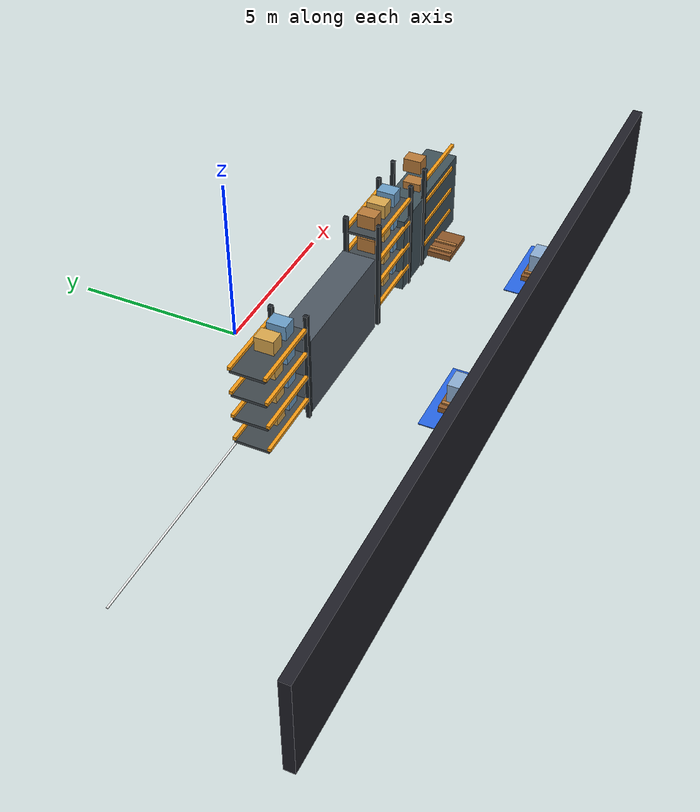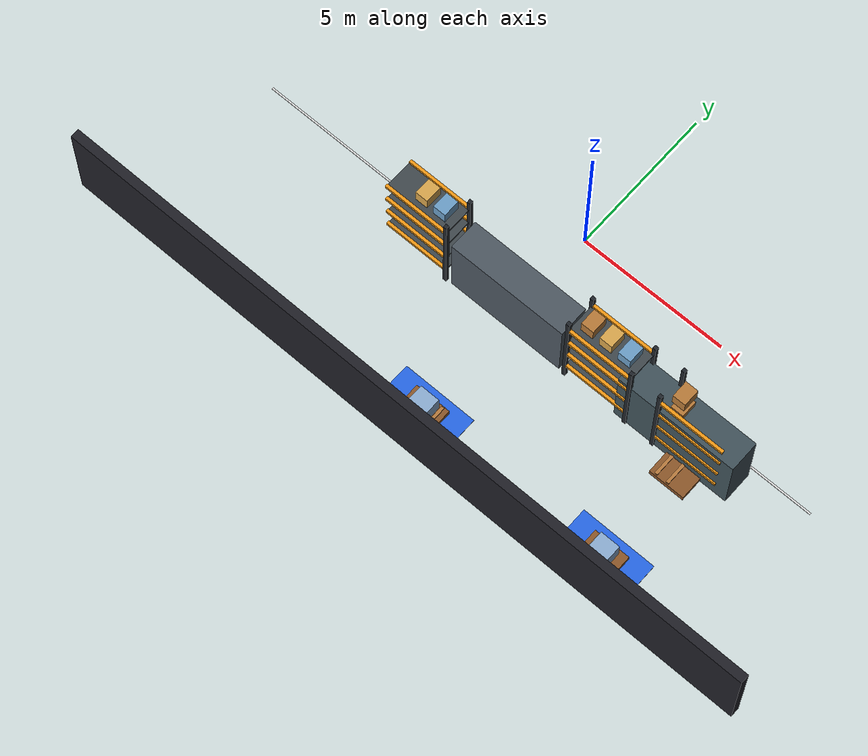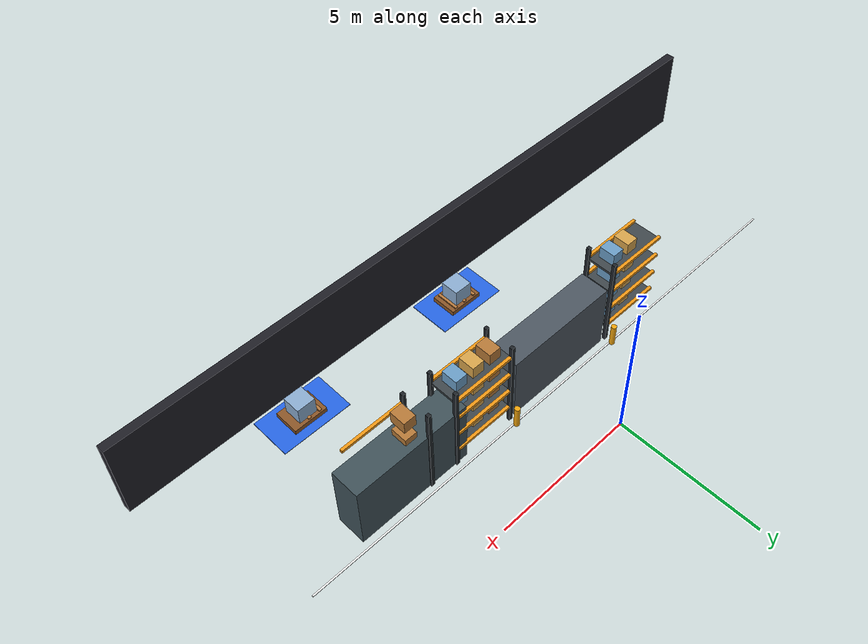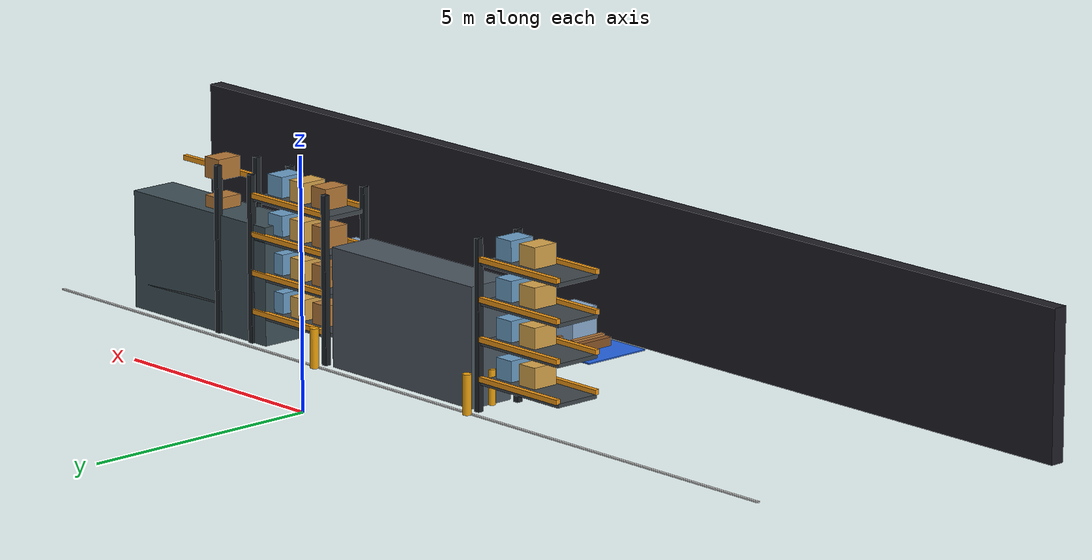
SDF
<sdf version="1.9">
 <world name="synaids_advanced_warehouse">
  <model name="wall_south">
   <static>true</static>
   <pose>0 -8 1.5 0 0 0</pose>
   <link name="link">
    <collision name="collision"><geometry><box><size>24 0.3 3</size></box></geometry></collision>
    <visual name="visual">
     <geometry><box><size>24 0.3 3</size></box></geometry>
     <material><ambient>0.08 0.08 0.10 1</ambient><diffuse>0.12 0.12 0.15 1</diffuse></material>
    </visual>
   </link>
  </model>
  <model name="shelf_5">
   <static>true</static>
   <pose>0 -3 1.2 0 0 0</pose>
   <link name="link">
    <collision name="collision"><geometry><box><size>4 1.0 2.4</size></box></geometry></collision>
    <visual name="visual">
     <geometry><box><size>4 1.0 2.4</size></box></geometry>
     <material><ambient>0.16 0.18 0.20 1</ambient><diffuse>0.30 0.34 0.38 1</diffuse></material>
    </visual>
   </link>
  </model>
  <model name="shelf_6">
   <static>true</static>
   <pose>6 -3 1.2 0 0 0</pose>
   <link name="link">
    <collision name="collision"><geometry><box><size>4 1.0 2.4</size></box></geometry></collision>
    <visual name="visual">
     <geometry><box><size>4 1.0 2.4</size></box></geometry>
     <material><ambient>0.12 0.18 0.20 1</ambient><diffuse>0.25 0.32 0.35 1</diffuse></material>
    </visual>
   </link>
  </model>
  <model name="storage_rack_6_post_2">
   <static>true</static>
   <pose>-2.1999999999999997 -3.5 1.7 0 0 0</pose>
   <link name="link">
    <visual name="visual">
     <geometry><box><size>0.12 0.12 3.4</size></box></geometry>
     <material>
      <ambient>0.12 0.14 0.16 1</ambient>
      <diffuse>0.12 0.14 0.16 1</diffuse>
      <specular>0.15 0.15 0.15 1</specular>
     </material>
    </visual>
    <collision name="collision"><geometry><box><size>0.12 0.12 3.4</size></box></geometry></collision>
   </link>
  </model>
  <model name="storage_rack_6_post_3">
   <static>true</static>
   <pose>-2.1999999999999997 -2.5 1.7 0 0 0</pose>
   <link name="link">
    <visual name="visual">
     <geometry><box><size>0.12 0.12 3.4</size></box></geometry>
     <material>
      <ambient>0.12 0.14 0.16 1</ambient>
      <diffuse>0.12 0.14 0.16 1</diffuse>
      <specular>0.15 0.15 0.15 1</specular>
     </material>
    </visual>
    <collision name="collision"><geometry><box><size>0.12 0.12 3.4</size></box></geometry></collision>
   </link>
  </model>
  <model name="storage_rack_6_beam_front_0">
   <static>true</static>
   <pose>-3.3 -3.5 0.65 0 0 0</pose>
   <link name="link">
    <visual name="visual">
     <geometry><box><size>2.2 0.1 0.1</size></box></geometry>
     <material>
      <ambient>0.95 0.60 0.08 1</ambient>
      <diffuse>0.95 0.60 0.08 1</diffuse>
      <specular>0.15 0.15 0.15 1</specular>
     </material>
    </visual>
    <collision name="collision"><geometry><box><size>2.2 0.1 0.1</size></box></geometry></collision>
   </link>
  </model>
  <model name="storage_rack_6_beam_back_0">
   <static>true</static>
   <pose>-3.3 -2.5 0.65 0 0 0</pose>
   <link name="link">
    <visual name="visual">
     <geometry><box><size>2.2 0.1 0.1</size></box></geometry>
     <material>
      <ambient>0.95 0.60 0.08 1</ambient>
      <diffuse>0.95 0.60 0.08 1</diffuse>
      <specular>0.15 0.15 0.15 1</specular>
     </material>
    </visual>
    <collision name="collision"><geometry><box><size>2.2 0.1 0.1</size></box></geometry></collision>
   </link>
  </model>
  <model name="storage_rack_6_shelf_0">
   <static>true</static>
   <pose>-3.3 -3.0 0.5700000000000001 0 0 0</pose>
   <link name="link">
    <visual name="visual">
     <geometry><box><size>2.2 1.0 0.08</size></box></geometry>
     <material>
      <ambient>0.25 0.28 0.30 1</ambient>
      <diffuse>0.25 0.28 0.30 1</diffuse>
      <specular>0.15 0.15 0.15 1</specular>
     </material>
    </visual>
    <collision name="collision"><geometry><box><size>2.2 1.0 0.08</size></box></geometry></collision>
   </link>
  </model>
  <model name="storage_rack_6_package_0_1">
   <static>true</static>
   <pose>-3.3 -3.0 0.87 0 0 0</pose>
   <link name="link">
    <visual name="visual">
     <geometry><box><size>0.42 0.55 0.42</size></box></geometry>
     <material>
      <ambient>0.85 0.65 0.30 1</ambient>
      <diffuse>0.85 0.65 0.30 1</diffuse>
      <specular>0.15 0.15 0.15 1</specular>
     </material>
    </visual>
    <collision name="collision"><geometry><box><size>0.42 0.55 0.42</size></box></geometry></collision>
   </link>
  </model>
  <model name="storage_rack_6_package_0_2">
   <static>true</static>
   <pose>-2.6499999999999995 -3.0 0.87 0 0 0</pose>
   <link name="link">
    <visual name="visual">
     <geometry><box><size>0.42 0.55 0.42</size></box></geometry>
     <material>
      <ambient>0.42 0.62 0.78 1</ambient>
      <diffuse>0.42 0.62 0.78 1</diffuse>
      <specular>0.15 0.15 0.15 1</specular>
     </material>
    </visual>
    <collision name="collision"><geometry><box><size>0.42 0.55 0.42</size></box></geometry></collision>
   </link>
  </model>
  <model name="storage_rack_6_beam_front_1">
   <static>true</static>
   <pose>-3.3 -3.5 1.4300000000000002 0 0 0</pose>
   <link name="link">
    <visual name="visual">
     <geometry><box><size>2.2 0.1 0.1</size></box></geometry>
     <material>
      <ambient>0.95 0.60 0.08 1</ambient>
      <diffuse>0.95 0.60 0.08 1</diffuse>
      <specular>0.15 0.15 0.15 1</specular>
     </material>
    </visual>
    <collision name="collision"><geometry><box><size>2.2 0.1 0.1</size></box></geometry></collision>
   </link>
  </model>
  <model name="storage_rack_6_beam_back_1">
   <static>true</static>
   <pose>-3.3 -2.5 1.4300000000000002 0 0 0</pose>
   <link name="link">
    <visual name="visual">
     <geometry><box><size>2.2 0.1 0.1</size></box></geometry>
     <material>
      <ambient>0.95 0.60 0.08 1</ambient>
      <diffuse>0.95 0.60 0.08 1</diffuse>
      <specular>0.15 0.15 0.15 1</specular>
     </material>
    </visual>
    <collision name="collision"><geometry><box><size>2.2 0.1 0.1</size></box></geometry></collision>
   </link>
  </model>
  <model name="storage_rack_6_shelf_1">
   <static>true</static>
   <pose>-3.3 -3.0 1.35 0 0 0</pose>
   <link name="link">
    <visual name="visual">
     <geometry><box><size>2.2 1.0 0.08</size></box></geometry>
     <material>
      <ambient>0.25 0.28 0.30 1</ambient>
      <diffuse>0.25 0.28 0.30 1</diffuse>
      <specular>0.15 0.15 0.15 1</specular>
     </material>
    </visual>
    <collision name="collision"><geometry><box><size>2.2 1.0 0.08</size></box></geometry></collision>
   </link>
  </model>
  <model name="storage_rack_6_package_1_1">
   <static>true</static>
   <pose>-3.3 -3.0 1.6500000000000001 0 0 0</pose>
   <link name="link">
    <visual name="visual">
     <geometry><box><size>0.42 0.55 0.42</size></box></geometry>
     <material>
      <ambient>0.85 0.65 0.30 1</ambient>
      <diffuse>0.85 0.65 0.30 1</diffuse>
      <specular>0.15 0.15 0.15 1</specular>
     </material>
    </visual>
    <collision name="collision"><geometry><box><size>0.42 0.55 0.42</size></box></geometry></collision>
   </link>
  </model>
  <model name="storage_rack_6_package_1_2">
   <static>true</static>
   <pose>-2.6499999999999995 -3.0 1.6500000000000001 0 0 0</pose>
   <link name="link">
    <visual name="visual">
     <geometry><box><size>0.42 0.55 0.42</size></box></geometry>
     <material>
      <ambient>0.42 0.62 0.78 1</ambient>
      <diffuse>0.42 0.62 0.78 1</diffuse>
      <specular>0.15 0.15 0.15 1</specular>
     </material>
    </visual>
    <collision name="collision"><geometry><box><size>0.42 0.55 0.42</size></box></geometry></collision>
   </link>
  </model>
  <model name="storage_rack_6_beam_front_2">
   <static>true</static>
   <pose>-3.3 -3.5 2.21 0 0 0</pose>
   <link name="link">
    <visual name="visual">
     <geometry><box><size>2.2 0.1 0.1</size></box></geometry>
     <material>
      <ambient>0.95 0.60 0.08 1</ambient>
      <diffuse>0.95 0.60 0.08 1</diffuse>
      <specular>0.15 0.15 0.15 1</specular>
     </material>
    </visual>
    <collision name="collision"><geometry><box><size>2.2 0.1 0.1</size></box></geometry></collision>
   </link>
  </model>
  <model name="storage_rack_6_beam_back_2">
   <static>true</static>
   <pose>-3.3 -2.5 2.21 0 0 0</pose>
   <link name="link">
    <visual name="visual">
     <geometry><box><size>2.2 0.1 0.1</size></box></geometry>
     <material>
      <ambient>0.95 0.60 0.08 1</ambient>
      <diffuse>0.95 0.60 0.08 1</diffuse>
      <specular>0.15 0.15 0.15 1</specular>
     </material>
    </visual>
    <collision name="collision"><geometry><box><size>2.2 0.1 0.1</size></box></geometry></collision>
   </link>
  </model>
  <model name="storage_rack_6_shelf_2">
   <static>true</static>
   <pose>-3.3 -3.0 2.13 0 0 0</pose>
   <link name="link">
    <visual name="visual">
     <geometry><box><size>2.2 1.0 0.08</size></box></geometry>
     <material>
      <ambient>0.25 0.28 0.30 1</ambient>
      <diffuse>0.25 0.28 0.30 1</diffuse>
      <specular>0.15 0.15 0.15 1</specular>
     </material>
    </visual>
    <collision name="collision"><geometry><box><size>2.2 1.0 0.08</size></box></geometry></collision>
   </link>
  </model>
  <model name="storage_rack_6_package_2_1">
   <static>true</static>
   <pose>-3.3 -3.0 2.43 0 0 0</pose>
   <link name="link">
    <visual name="visual">
     <geometry><box><size>0.42 0.55 0.42</size></box></geometry>
     <material>
      <ambient>0.85 0.65 0.30 1</ambient>
      <diffuse>0.85 0.65 0.30 1</diffuse>
      <specular>0.15 0.15 0.15 1</specular>
     </material>
    </visual>
    <collision name="collision"><geometry><box><size>0.42 0.55 0.42</size></box></geometry></collision>
   </link>
  </model>
  <model name="storage_rack_6_package_2_2">
   <static>true</static>
   <pose>-2.6499999999999995 -3.0 2.43 0 0 0</pose>
   <link name="link">
    <visual name="visual">
     <geometry><box><size>0.42 0.55 0.42</size></box></geometry>
     <material>
      <ambient>0.42 0.62 0.78 1</ambient>
      <diffuse>0.42 0.62 0.78 1</diffuse>
      <specular>0.15 0.15 0.15 1</specular>
     </material>
    </visual>
    <collision name="collision"><geometry><box><size>0.42 0.55 0.42</size></box></geometry></collision>
   </link>
  </model>
  <model name="storage_rack_6_beam_front_3">
   <static>true</static>
   <pose>-3.3 -3.5 2.9899999999999998 0 0 0</pose>
   <link name="link">
    <visual name="visual">
     <geometry><box><size>2.2 0.1 0.1</size></box></geometry>
     <material>
      <ambient>0.95 0.60 0.08 1</ambient>
      <diffuse>0.95 0.60 0.08 1</diffuse>
      <specular>0.15 0.15 0.15 1</specular>
     </material>
    </visual>
    <collision name="collision"><geometry><box><size>2.2 0.1 0.1</size></box></geometry></collision>
   </link>
  </model>
  <model name="storage_rack_6_beam_back_3">
   <static>true</static>
   <pose>-3.3 -2.5 2.9899999999999998 0 0 0</pose>
   <link name="link">
    <visual name="visual">
     <geometry><box><size>2.2 0.1 0.1</size></box></geometry>
     <material>
      <ambient>0.95 0.60 0.08 1</ambient>
      <diffuse>0.95 0.60 0.08 1</diffuse>
      <specular>0.15 0.15 0.15 1</specular>
     </material>
    </visual>
    <collision name="collision"><geometry><box><size>2.2 0.1 0.1</size></box></geometry></collision>
   </link>
  </model>
  <model name="storage_rack_6_shelf_3">
   <static>true</static>
   <pose>-3.3 -3.0 2.9099999999999997 0 0 0</pose>
   <link name="link">
    <visual name="visual">
     <geometry><box><size>2.2 1.0 0.08</size></box></geometry>
     <material>
      <ambient>0.25 0.28 0.30 1</ambient>
      <diffuse>0.25 0.28 0.30 1</diffuse>
      <specular>0.15 0.15 0.15 1</specular>
     </material>
    </visual>
    <collision name="collision"><geometry><box><size>2.2 1.0 0.08</size></box></geometry></collision>
   </link>
  </model>
  <model name="storage_rack_6_package_3_1">
   <static>true</static>
   <pose>-3.3 -3.0 3.21 0 0 0</pose>
   <link name="link">
    <visual name="visual">
     <geometry><box><size>0.42 0.55 0.42</size></box></geometry>
     <material>
      <ambient>0.85 0.65 0.30 1</ambient>
      <diffuse>0.85 0.65 0.30 1</diffuse>
      <specular>0.15 0.15 0.15 1</specular>
     </material>
    </visual>
    <collision name="collision"><geometry><box><size>0.42 0.55 0.42</size></box></geometry></collision>
   </link>
  </model>
  <model name="storage_rack_6_package_3_2">
   <static>true</static>
   <pose>-2.6499999999999995 -3.0 3.21 0 0 0</pose>
   <link name="link">
    <visual name="visual">
     <geometry><box><size>0.42 0.55 0.42</size></box></geometry>
     <material>
      <ambient>0.42 0.62 0.78 1</ambient>
      <diffuse>0.42 0.62 0.78 1</diffuse>
      <specular>0.15 0.15 0.15 1</specular>
     </material>
    </visual>
    <collision name="collision"><geometry><box><size>0.42 0.55 0.42</size></box></geometry></collision>
   </link>
  </model>
  <model name="storage_rack_6_guard_right">
   <static>true</static>
   <pose>-2.0199999999999996 -3.0 0.35 0 0 0</pose>
   <link name="link">
    <visual name="visual">
     <geometry><cylinder><radius>0.07</radius><length>0.7</length></cylinder></geometry>
     <material>
      <ambient>0.95 0.65 0.05 1</ambient>
      <diffuse>0.95 0.65 0.05 1</diffuse>
      <specular>0.15 0.15 0.15 1</specular>
     </material>
    </visual>
    <collision name="collision">
     <geometry><cylinder><radius>0.07</radius><length>0.7</length></cylinder></geometry>
    </collision>
   </link>
  </model>
  <model name="storage_rack_7_post_0">
   <static>true</static>
   <pose>2.1999999999999997 -3.5 1.7 0 0 0</pose>
   <link name="link">
    <visual name="visual">
     <geometry><box><size>0.12 0.12 3.4</size></box></geometry>
     <material>
      <ambient>0.12 0.14 0.16 1</ambient>
      <diffuse>0.12 0.14 0.16 1</diffuse>
      <specular>0.15 0.15 0.15 1</specular>
     </material>
    </visual>
    <collision name="collision"><geometry><box><size>0.12 0.12 3.4</size></box></geometry></collision>
   </link>
  </model>
  <model name="storage_rack_7_post_1">
   <static>true</static>
   <pose>2.1999999999999997 -2.5 1.7 0 0 0</pose>
   <link name="link">
    <visual name="visual">
     <geometry><box><size>0.12 0.12 3.4</size></box></geometry>
     <material>
      <ambient>0.12 0.14 0.16 1</ambient>
      <diffuse>0.12 0.14 0.16 1</diffuse>
      <specular>0.15 0.15 0.15 1</specular>
     </material>
    </visual>
    <collision name="collision"><geometry><box><size>0.12 0.12 3.4</size></box></geometry></collision>
   </link>
  </model>
  <model name="storage_rack_7_post_2">
   <static>true</static>
   <pose>4.4 -3.5 1.7 0 0 0</pose>
   <link name="link">
    <visual name="visual">
     <geometry><box><size>0.12 0.12 3.4</size></box></geometry>
     <material>
      <ambient>0.12 0.14 0.16 1</ambient>
      <diffuse>0.12 0.14 0.16 1</diffuse>
      <specular>0.15 0.15 0.15 1</specular>
     </material>
    </visual>
    <collision name="collision"><geometry><box><size>0.12 0.12 3.4</size></box></geometry></collision>
   </link>
  </model>
  <model name="storage_rack_7_post_3">
   <static>true</static>
   <pose>4.4 -2.5 1.7 0 0 0</pose>
   <link name="link">
    <visual name="visual">
     <geometry><box><size>0.12 0.12 3.4</size></box></geometry>
     <material>
      <ambient>0.12 0.14 0.16 1</ambient>
      <diffuse>0.12 0.14 0.16 1</diffuse>
      <specular>0.15 0.15 0.15 1</specular>
     </material>
    </visual>
    <collision name="collision"><geometry><box><size>0.12 0.12 3.4</size></box></geometry></collision>
   </link>
  </model>
  <model name="storage_rack_7_beam_front_0">
   <static>true</static>
   <pose>3.3 -3.5 0.65 0 0 0</pose>
   <link name="link">
    <visual name="visual">
     <geometry><box><size>2.2 0.1 0.1</size></box></geometry>
     <material>
      <ambient>0.95 0.60 0.08 1</ambient>
      <diffuse>0.95 0.60 0.08 1</diffuse>
      <specular>0.15 0.15 0.15 1</specular>
     </material>
    </visual>
    <collision name="collision"><geometry><box><size>2.2 0.1 0.1</size></box></geometry></collision>
   </link>
  </model>
  <model name="storage_rack_7_beam_back_0">
   <static>true</static>
   <pose>3.3 -2.5 0.65 0 0 0</pose>
   <link name="link">
    <visual name="visual">
     <geometry><box><size>2.2 0.1 0.1</size></box></geometry>
     <material>
      <ambient>0.95 0.60 0.08 1</ambient>
      <diffuse>0.95 0.60 0.08 1</diffuse>
      <specular>0.15 0.15 0.15 1</specular>
     </material>
    </visual>
    <collision name="collision"><geometry><box><size>2.2 0.1 0.1</size></box></geometry></collision>
   </link>
  </model>
  <model name="storage_rack_7_shelf_0">
   <static>true</static>
   <pose>3.3 -3.0 0.5700000000000001 0 0 0</pose>
   <link name="link">
    <visual name="visual">
     <geometry><box><size>2.2 1.0 0.08</size></box></geometry>
     <material>
      <ambient>0.25 0.28 0.30 1</ambient>
      <diffuse>0.25 0.28 0.30 1</diffuse>
      <specular>0.15 0.15 0.15 1</specular>
     </material>
    </visual>
    <collision name="collision"><geometry><box><size>2.2 1.0 0.08</size></box></geometry></collision>
   </link>
  </model>
  <model name="storage_rack_7_package_0_0">
   <static>true</static>
   <pose>2.65 -3.0 0.87 0 0 0</pose>
   <link name="link">
    <visual name="visual">
     <geometry><box><size>0.42 0.55 0.42</size></box></geometry>
     <material>
      <ambient>0.72 0.48 0.22 1</ambient>
      <diffuse>0.72 0.48 0.22 1</diffuse>
      <specular>0.15 0.15 0.15 1</specular>
     </material>
    </visual>
    <collision name="collision"><geometry><box><size>0.42 0.55 0.42</size></box></geometry></collision>
   </link>
  </model>
  <model name="storage_rack_7_package_0_1">
   <static>true</static>
   <pose>3.3 -3.0 0.87 0 0 0</pose>
   <link name="link">
    <visual name="visual">
     <geometry><box><size>0.42 0.55 0.42</size></box></geometry>
     <material>
      <ambient>0.85 0.65 0.30 1</ambient>
      <diffuse>0.85 0.65 0.30 1</diffuse>
      <specular>0.15 0.15 0.15 1</specular>
     </material>
    </visual>
    <collision name="collision"><geometry><box><size>0.42 0.55 0.42</size></box></geometry></collision>
   </link>
  </model>
  <model name="storage_rack_7_package_0_2">
   <static>true</static>
   <pose>3.95 -3.0 0.87 0 0 0</pose>
   <link name="link">
    <visual name="visual">
     <geometry><box><size>0.42 0.55 0.42</size></box></geometry>
     <material>
      <ambient>0.42 0.62 0.78 1</ambient>
      <diffuse>0.42 0.62 0.78 1</diffuse>
      <specular>0.15 0.15 0.15 1</specular>
     </material>
    </visual>
    <collision name="collision"><geometry><box><size>0.42 0.55 0.42</size></box></geometry></collision>
   </link>
  </model>
  <model name="storage_rack_7_beam_front_1">
   <static>true</static>
   <pose>3.3 -3.5 1.4300000000000002 0 0 0</pose>
   <link name="link">
    <visual name="visual">
     <geometry><box><size>2.2 0.1 0.1</size></box></geometry>
     <material>
      <ambient>0.95 0.60 0.08 1</ambient>
      <diffuse>0.95 0.60 0.08 1</diffuse>
      <specular>0.15 0.15 0.15 1</specular>
     </material>
    </visual>
    <collision name="collision"><geometry><box><size>2.2 0.1 0.1</size></box></geometry></collision>
   </link>
  </model>
  <model name="storage_rack_7_beam_back_1">
   <static>true</static>
   <pose>3.3 -2.5 1.4300000000000002 0 0 0</pose>
   <link name="link">
    <visual name="visual">
     <geometry><box><size>2.2 0.1 0.1</size></box></geometry>
     <material>
      <ambient>0.95 0.60 0.08 1</ambient>
      <diffuse>0.95 0.60 0.08 1</diffuse>
      <specular>0.15 0.15 0.15 1</specular>
     </material>
    </visual>
    <collision name="collision"><geometry><box><size>2.2 0.1 0.1</size></box></geometry></collision>
   </link>
  </model>
  <model name="storage_rack_7_shelf_1">
   <static>true</static>
   <pose>3.3 -3.0 1.35 0 0 0</pose>
   <link name="link">
    <visual name="visual">
     <geometry><box><size>2.2 1.0 0.08</size></box></geometry>
     <material>
      <ambient>0.25 0.28 0.30 1</ambient>
      <diffuse>0.25 0.28 0.30 1</diffuse>
      <specular>0.15 0.15 0.15 1</specular>
     </material>
    </visual>
    <collision name="collision"><geometry><box><size>2.2 1.0 0.08</size></box></geometry></collision>
   </link>
  </model>
  <model name="storage_rack_7_package_1_0">
   <static>true</static>
   <pose>2.65 -3.0 1.6500000000000001 0 0 0</pose>
   <link name="link">
    <visual name="visual">
     <geometry><box><size>0.42 0.55 0.42</size></box></geometry>
     <material>
      <ambient>0.72 0.48 0.22 1</ambient>
      <diffuse>0.72 0.48 0.22 1</diffuse>
      <specular>0.15 0.15 0.15 1</specular>
     </material>
    </visual>
    <collision name="collision"><geometry><box><size>0.42 0.55 0.42</size></box></geometry></collision>
   </link>
  </model>
  <model name="storage_rack_7_package_1_1">
   <static>true</static>
   <pose>3.3 -3.0 1.6500000000000001 0 0 0</pose>
   <link name="link">
    <visual name="visual">
     <geometry><box><size>0.42 0.55 0.42</size></box></geometry>
     <material>
      <ambient>0.85 0.65 0.30 1</ambient>
      <diffuse>0.85 0.65 0.30 1</diffuse>
      <specular>0.15 0.15 0.15 1</specular>
     </material>
    </visual>
    <collision name="collision"><geometry><box><size>0.42 0.55 0.42</size></box></geometry></collision>
   </link>
  </model>
  <model name="storage_rack_7_package_1_2">
   <static>true</static>
   <pose>3.95 -3.0 1.6500000000000001 0 0 0</pose>
   <link name="link">
    <visual name="visual">
     <geometry><box><size>0.42 0.55 0.42</size></box></geometry>
     <material>
      <ambient>0.42 0.62 0.78 1</ambient>
      <diffuse>0.42 0.62 0.78 1</diffuse>
      <specular>0.15 0.15 0.15 1</specular>
     </material>
    </visual>
    <collision name="collision"><geometry><box><size>0.42 0.55 0.42</size></box></geometry></collision>
   </link>
  </model>
  <model name="storage_rack_7_beam_front_2">
   <static>true</static>
   <pose>3.3 -3.5 2.21 0 0 0</pose>
   <link name="link">
    <visual name="visual">
     <geometry><box><size>2.2 0.1 0.1</size></box></geometry>
     <material>
      <ambient>0.95 0.60 0.08 1</ambient>
      <diffuse>0.95 0.60 0.08 1</diffuse>
      <specular>0.15 0.15 0.15 1</specular>
     </material>
    </visual>
    <collision name="collision"><geometry><box><size>2.2 0.1 0.1</size></box></geometry></collision>
   </link>
  </model>
  <model name="storage_rack_7_beam_back_2">
   <static>true</static>
   <pose>3.3 -2.5 2.21 0 0 0</pose>
   <link name="link">
    <visual name="visual">
     <geometry><box><size>2.2 0.1 0.1</size></box></geometry>
     <material>
      <ambient>0.95 0.60 0.08 1</ambient>
      <diffuse>0.95 0.60 0.08 1</diffuse>
      <specular>0.15 0.15 0.15 1</specular>
     </material>
    </visual>
    <collision name="collision"><geometry><box><size>2.2 0.1 0.1</size></box></geometry></collision>
   </link>
  </model>
  <model name="storage_rack_7_shelf_2">
   <static>true</static>
   <pose>3.3 -3.0 2.13 0 0 0</pose>
   <link name="link">
    <visual name="visual">
     <geometry><box><size>2.2 1.0 0.08</size></box></geometry>
     <material>
      <ambient>0.25 0.28 0.30 1</ambient>
      <diffuse>0.25 0.28 0.30 1</diffuse>
      <specular>0.15 0.15 0.15 1</specular>
     </material>
    </visual>
    <collision name="collision"><geometry><box><size>2.2 1.0 0.08</size></box></geometry></collision>
   </link>
  </model>
  <model name="storage_rack_7_package_2_0">
   <static>true</static>
   <pose>2.65 -3.0 2.43 0 0 0</pose>
   <link name="link">
    <visual name="visual">
     <geometry><box><size>0.42 0.55 0.42</size></box></geometry>
     <material>
      <ambient>0.72 0.48 0.22 1</ambient>
      <diffuse>0.72 0.48 0.22 1</diffuse>
      <specular>0.15 0.15 0.15 1</specular>
     </material>
    </visual>
    <collision name="collision"><geometry><box><size>0.42 0.55 0.42</size></box></geometry></collision>
   </link>
  </model>
  <model name="storage_rack_7_package_2_1">
   <static>true</static>
   <pose>3.3 -3.0 2.43 0 0 0</pose>
   <link name="link">
    <visual name="visual">
     <geometry><box><size>0.42 0.55 0.42</size></box></geometry>
     <material>
      <ambient>0.85 0.65 0.30 1</ambient>
      <diffuse>0.85 0.65 0.30 1</diffuse>
      <specular>0.15 0.15 0.15 1</specular>
     </material>
    </visual>
    <collision name="collision"><geometry><box><size>0.42 0.55 0.42</size></box></geometry></collision>
   </link>
  </model>
  <model name="storage_rack_7_package_2_2">
   <static>true</static>
   <pose>3.95 -3.0 2.43 0 0 0</pose>
   <link name="link">
    <visual name="visual">
     <geometry><box><size>0.42 0.55 0.42</size></box></geometry>
     <material>
      <ambient>0.42 0.62 0.78 1</ambient>
      <diffuse>0.42 0.62 0.78 1</diffuse>
      <specular>0.15 0.15 0.15 1</specular>
     </material>
    </visual>
    <collision name="collision"><geometry><box><size>0.42 0.55 0.42</size></box></geometry></collision>
   </link>
  </model>
  <model name="storage_rack_7_beam_front_3">
   <static>true</static>
   <pose>3.3 -3.5 2.9899999999999998 0 0 0</pose>
   <link name="link">
    <visual name="visual">
     <geometry><box><size>2.2 0.1 0.1</size></box></geometry>
     <material>
      <ambient>0.95 0.60 0.08 1</ambient>
      <diffuse>0.95 0.60 0.08 1</diffuse>
      <specular>0.15 0.15 0.15 1</specular>
     </material>
    </visual>
    <collision name="collision"><geometry><box><size>2.2 0.1 0.1</size></box></geometry></collision>
   </link>
  </model>
  <model name="storage_rack_7_beam_back_3">
   <static>true</static>
   <pose>3.3 -2.5 2.9899999999999998 0 0 0</pose>
   <link name="link">
    <visual name="visual">
     <geometry><box><size>2.2 0.1 0.1</size></box></geometry>
     <material>
      <ambient>0.95 0.60 0.08 1</ambient>
      <diffuse>0.95 0.60 0.08 1</diffuse>
      <specular>0.15 0.15 0.15 1</specular>
     </material>
    </visual>
    <collision name="collision"><geometry><box><size>2.2 0.1 0.1</size></box></geometry></collision>
   </link>
  </model>
  <model name="storage_rack_7_shelf_3">
   <static>true</static>
   <pose>3.3 -3.0 2.9099999999999997 0 0 0</pose>
   <link name="link">
    <visual name="visual">
     <geometry><box><size>2.2 1.0 0.08</size></box></geometry>
     <material>
      <ambient>0.25 0.28 0.30 1</ambient>
      <diffuse>0.25 0.28 0.30 1</diffuse>
      <specular>0.15 0.15 0.15 1</specular>
     </material>
    </visual>
    <collision name="collision"><geometry><box><size>2.2 1.0 0.08</size></box></geometry></collision>
   </link>
  </model>
  <model name="storage_rack_7_package_3_0">
   <static>true</static>
   <pose>2.65 -3.0 3.21 0 0 0</pose>
   <link name="link">
    <visual name="visual">
     <geometry><box><size>0.42 0.55 0.42</size></box></geometry>
     <material>
      <ambient>0.72 0.48 0.22 1</ambient>
      <diffuse>0.72 0.48 0.22 1</diffuse>
      <specular>0.15 0.15 0.15 1</specular>
     </material>
    </visual>
    <collision name="collision"><geometry><box><size>0.42 0.55 0.42</size></box></geometry></collision>
   </link>
  </model>
  <model name="storage_rack_7_package_3_1">
   <static>true</static>
   <pose>3.3 -3.0 3.21 0 0 0</pose>
   <link name="link">
    <visual name="visual">
     <geometry><box><size>0.42 0.55 0.42</size></box></geometry>
     <material>
      <ambient>0.85 0.65 0.30 1</ambient>
      <diffuse>0.85 0.65 0.30 1</diffuse>
      <specular>0.15 0.15 0.15 1</specular>
     </material>
    </visual>
    <collision name="collision"><geometry><box><size>0.42 0.55 0.42</size></box></geometry></collision>
   </link>
  </model>
  <model name="storage_rack_7_package_3_2">
   <static>true</static>
   <pose>3.95 -3.0 3.21 0 0 0</pose>
   <link name="link">
    <visual name="visual">
     <geometry><box><size>0.42 0.55 0.42</size></box></geometry>
     <material>
      <ambient>0.42 0.62 0.78 1</ambient>
      <diffuse>0.42 0.62 0.78 1</diffuse>
      <specular>0.15 0.15 0.15 1</specular>
     </material>
    </visual>
    <collision name="collision"><geometry><box><size>0.42 0.55 0.42</size></box></geometry></collision>
   </link>
  </model>
  <model name="storage_rack_7_guard_left">
   <static>true</static>
   <pose>2.0199999999999996 -3.0 0.35 0 0 0</pose>
   <link name="link">
    <visual name="visual">
     <geometry><cylinder><radius>0.07</radius><length>0.7</length></cylinder></geometry>
     <material>
      <ambient>0.95 0.65 0.05 1</ambient>
      <diffuse>0.95 0.65 0.05 1</diffuse>
      <specular>0.15 0.15 0.15 1</specular>
     </material>
    </visual>
    <collision name="collision">
     <geometry><cylinder><radius>0.07</radius><length>0.7</length></cylinder></geometry>
    </collision>
   </link>
  </model>
  <model name="storage_rack_7_guard_right">
   <static>true</static>
   <pose>4.58 -3.0 0.35 0 0 0</pose>
   <link name="link">
    <visual name="visual">
     <geometry><cylinder><radius>0.07</radius><length>0.7</length></cylinder></geometry>
     <material>
      <ambient>0.95 0.65 0.05 1</ambient>
      <diffuse>0.95 0.65 0.05 1</diffuse>
      <specular>0.15 0.15 0.15 1</specular>
     </material>
    </visual>
    <collision name="collision">
     <geometry><cylinder><radius>0.07</radius><length>0.7</length></cylinder></geometry>
    </collision>
   </link>
  </model>
  <model name="storage_rack_8_post_0">
   <static>true</static>
   <pose>5.4 -3.5 1.7 0 0 0</pose>
   <link name="link">
    <visual name="visual">
     <geometry><box><size>0.12 0.12 3.4</size></box></geometry>
     <material>
      <ambient>0.12 0.14 0.16 1</ambient>
      <diffuse>0.12 0.14 0.16 1</diffuse>
      <specular>0.15 0.15 0.15 1</specular>
     </material>
    </visual>
    <collision name="collision"><geometry><box><size>0.12 0.12 3.4</size></box></geometry></collision>
   </link>
  </model>
  <model name="storage_rack_8_post_1">
   <static>true</static>
   <pose>5.4 -2.5 1.7 0 0 0</pose>
   <link name="link">
    <visual name="visual">
     <geometry><box><size>0.12 0.12 3.4</size></box></geometry>
     <material>
      <ambient>0.12 0.14 0.16 1</ambient>
      <diffuse>0.12 0.14 0.16 1</diffuse>
      <specular>0.15 0.15 0.15 1</specular>
     </material>
    </visual>
    <collision name="collision"><geometry><box><size>0.12 0.12 3.4</size></box></geometry></collision>
   </link>
  </model>
  <model name="storage_rack_8_beam_front_0">
   <static>true</static>
   <pose>6.5 -3.5 0.65 0 0 0</pose>
   <link name="link">
    <visual name="visual">
     <geometry><box><size>2.2 0.1 0.1</size></box></geometry>
     <material>
      <ambient>0.95 0.60 0.08 1</ambient>
      <diffuse>0.95 0.60 0.08 1</diffuse>
      <specular>0.15 0.15 0.15 1</specular>
     </material>
    </visual>
    <collision name="collision"><geometry><box><size>2.2 0.1 0.1</size></box></geometry></collision>
   </link>
  </model>
  <model name="storage_rack_8_shelf_0">
   <static>true</static>
   <pose>6.5 -3.0 0.5700000000000001 0 0 0</pose>
   <link name="link">
    <visual name="visual">
     <geometry><box><size>2.2 1.0 0.08</size></box></geometry>
     <material>
      <ambient>0.25 0.28 0.30 1</ambient>
      <diffuse>0.25 0.28 0.30 1</diffuse>
      <specular>0.15 0.15 0.15 1</specular>
     </material>
    </visual>
    <collision name="collision"><geometry><box><size>2.2 1.0 0.08</size></box></geometry></collision>
   </link>
  </model>
  <model name="storage_rack_8_package_0_0">
   <static>true</static>
   <pose>5.85 -3.0 0.87 0 0 0</pose>
   <link name="link">
    <visual name="visual">
     <geometry><box><size>0.42 0.55 0.42</size></box></geometry>
     <material>
      <ambient>0.72 0.48 0.22 1</ambient>
      <diffuse>0.72 0.48 0.22 1</diffuse>
      <specular>0.15 0.15 0.15 1</specular>
     </material>
    </visual>
    <collision name="collision"><geometry><box><size>0.42 0.55 0.42</size></box></geometry></collision>
   </link>
  </model>
  <model name="storage_rack_8_beam_front_1">
   <static>true</static>
   <pose>6.5 -3.5 1.4300000000000002 0 0 0</pose>
   <link name="link">
    <visual name="visual">
     <geometry><box><size>2.2 0.1 0.1</size></box></geometry>
     <material>
      <ambient>0.95 0.60 0.08 1</ambient>
      <diffuse>0.95 0.60 0.08 1</diffuse>
      <specular>0.15 0.15 0.15 1</specular>
     </material>
    </visual>
    <collision name="collision"><geometry><box><size>2.2 0.1 0.1</size></box></geometry></collision>
   </link>
  </model>
  <model name="storage_rack_8_package_1_0">
   <static>true</static>
   <pose>5.85 -3.0 1.6500000000000001 0 0 0</pose>
   <link name="link">
    <visual name="visual">
     <geometry><box><size>0.42 0.55 0.42</size></box></geometry>
     <material>
      <ambient>0.72 0.48 0.22 1</ambient>
      <diffuse>0.72 0.48 0.22 1</diffuse>
      <specular>0.15 0.15 0.15 1</specular>
     </material>
    </visual>
    <collision name="collision"><geometry><box><size>0.42 0.55 0.42</size></box></geometry></collision>
   </link>
  </model>
  <model name="storage_rack_8_beam_front_2">
   <static>true</static>
   <pose>6.5 -3.5 2.21 0 0 0</pose>
   <link name="link">
    <visual name="visual">
     <geometry><box><size>2.2 0.1 0.1</size></box></geometry>
     <material>
      <ambient>0.95 0.60 0.08 1</ambient>
      <diffuse>0.95 0.60 0.08 1</diffuse>
      <specular>0.15 0.15 0.15 1</specular>
     </material>
    </visual>
    <collision name="collision"><geometry><box><size>2.2 0.1 0.1</size></box></geometry></collision>
   </link>
  </model>
  <model name="storage_rack_8_package_2_0">
   <static>true</static>
   <pose>5.85 -3.0 2.43 0 0 0</pose>
   <link name="link">
    <visual name="visual">
     <geometry><box><size>0.42 0.55 0.42</size></box></geometry>
     <material>
      <ambient>0.72 0.48 0.22 1</ambient>
      <diffuse>0.72 0.48 0.22 1</diffuse>
      <specular>0.15 0.15 0.15 1</specular>
     </material>
    </visual>
    <collision name="collision"><geometry><box><size>0.42 0.55 0.42</size></box></geometry></collision>
   </link>
  </model>
  <model name="storage_rack_8_beam_front_3">
   <static>true</static>
   <pose>6.5 -3.5 2.9899999999999998 0 0 0</pose>
   <link name="link">
    <visual name="visual">
     <geometry><box><size>2.2 0.1 0.1</size></box></geometry>
     <material>
      <ambient>0.95 0.60 0.08 1</ambient>
      <diffuse>0.95 0.60 0.08 1</diffuse>
      <specular>0.15 0.15 0.15 1</specular>
     </material>
    </visual>
    <collision name="collision"><geometry><box><size>2.2 0.1 0.1</size></box></geometry></collision>
   </link>
  </model>
  <model name="storage_rack_8_package_3_0">
   <static>true</static>
   <pose>5.85 -3.0 3.21 0 0 0</pose>
   <link name="link">
    <visual name="visual">
     <geometry><box><size>0.42 0.55 0.42</size></box></geometry>
     <material>
      <ambient>0.72 0.48 0.22 1</ambient>
      <diffuse>0.72 0.48 0.22 1</diffuse>
      <specular>0.15 0.15 0.15 1</specular>
     </material>
    </visual>
    <collision name="collision"><geometry><box><size>0.42 0.55 0.42</size></box></geometry></collision>
   </link>
  </model>
  <model name="storage_rack_8_guard_left">
   <static>true</static>
   <pose>5.220000000000001 -3.0 0.35 0 0 0</pose>
   <link name="link">
    <visual name="visual">
     <geometry><cylinder><radius>0.07</radius><length>0.7</length></cylinder></geometry>
     <material>
      <ambient>0.95 0.65 0.05 1</ambient>
      <diffuse>0.95 0.65 0.05 1</diffuse>
      <specular>0.15 0.15 0.15 1</specular>
     </material>
    </visual>
    <collision name="collision">
     <geometry><cylinder><radius>0.07</radius><length>0.7</length></cylinder></geometry>
    </collision>
   </link>
  </model>
  <model name="dropoff_zone_2">
   <static>true</static>
   <pose>0.0 -7.0 0.012 0 0 0</pose>
   <link name="link">
    <visual name="visual">
     <geometry><box><size>2.5 1.5 0.025</size></box></geometry>
     <material>
      <ambient>0.15 0.40 0.90 1</ambient>
      <diffuse>0.15 0.40 0.90 1</diffuse>
      <specular>0.15 0.15 0.15 1</specular>
     </material>
    </visual>
   </link>
  </model>
  <model name="dropoff_pallet_2_base">
   <static>true</static>
   <pose>0.0 -7.0 0.11 0 0 0</pose>
   <link name="link">
    <visual name="visual">
     <geometry><box><size>1.2 0.9 0.18</size></box></geometry>
     <material>
      <ambient>0.55 0.34 0.16 1</ambient>
      <diffuse>0.55 0.34 0.16 1</diffuse>
      <specular>0.15 0.15 0.15 1</specular>
     </material>
    </visual>
    <collision name="collision"><geometry><box><size>1.2 0.9 0.18</size></box></geometry></collision>
   </link>
  </model>
  <model name="dropoff_pallet_2_slat_0">
   <static>true</static>
   <pose>-0.4 -7.0 0.22 0 0 0</pose>
   <link name="link">
    <visual name="visual">
     <geometry><box><size>0.1 0.82 0.06</size></box></geometry>
     <material>
      <ambient>0.72 0.48 0.24 1</ambient>
      <diffuse>0.72 0.48 0.24 1</diffuse>
      <specular>0.15 0.15 0.15 1</specular>
     </material>
    </visual>
    <collision name="collision"><geometry><box><size>0.1 0.82 0.06</size></box></geometry></collision>
   </link>
  </model>
  <model name="dropoff_pallet_2_slat_1">
   <static>true</static>
   <pose>0.0 -7.0 0.22 0 0 0</pose>
   <link name="link">
    <visual name="visual">
     <geometry><box><size>0.1 0.82 0.06</size></box></geometry>
     <material>
      <ambient>0.72 0.48 0.24 1</ambient>
      <diffuse>0.72 0.48 0.24 1</diffuse>
      <specular>0.15 0.15 0.15 1</specular>
     </material>
    </visual>
    <collision name="collision"><geometry><box><size>0.1 0.82 0.06</size></box></geometry></collision>
   </link>
  </model>
  <model name="dropoff_pallet_2_slat_2">
   <static>true</static>
   <pose>0.4 -7.0 0.22 0 0 0</pose>
   <link name="link">
    <visual name="visual">
     <geometry><box><size>0.1 0.82 0.06</size></box></geometry>
     <material>
      <ambient>0.72 0.48 0.24 1</ambient>
      <diffuse>0.72 0.48 0.24 1</diffuse>
      <specular>0.15 0.15 0.15 1</specular>
     </material>
    </visual>
    <collision name="collision"><geometry><box><size>0.1 0.82 0.06</size></box></geometry></collision>
   </link>
  </model>
  <model name="dropoff_package_2">
   <static>true</static>
   <pose>0.0 -7.0 0.48 0 0 0</pose>
   <link name="link">
    <visual name="visual">
     <geometry><box><size>0.65 0.65 0.65</size></box></geometry>
     <material>
      <ambient>0.55 0.68 0.82 1</ambient>
      <diffuse>0.55 0.68 0.82 1</diffuse>
      <specular>0.15 0.15 0.15 1</specular>
     </material>
    </visual>
    <collision name="collision"><geometry><box><size>0.65 0.65 0.65</size></box></geometry></collision>
   </link>
  </model>
  <model name="dropoff_zone_3">
   <static>true</static>
   <pose>6.5 -7.0 0.012 0 0 0</pose>
   <link name="link">
    <visual name="visual">
     <geometry><box><size>2.5 1.5 0.025</size></box></geometry>
     <material>
      <ambient>0.15 0.40 0.90 1</ambient>
      <diffuse>0.15 0.40 0.90 1</diffuse>
      <specular>0.15 0.15 0.15 1</specular>
     </material>
    </visual>
   </link>
  </model>
  <model name="dropoff_pallet_3_base">
   <static>true</static>
   <pose>6.5 -7.0 0.11 0 0 0</pose>
   <link name="link">
    <visual name="visual">
     <geometry><box><size>1.2 0.9 0.18</size></box></geometry>
     <material>
      <ambient>0.55 0.34 0.16 1</ambient>
      <diffuse>0.55 0.34 0.16 1</diffuse>
      <specular>0.15 0.15 0.15 1</specular>
     </material>
    </visual>
    <collision name="collision"><geometry><box><size>1.2 0.9 0.18</size></box></geometry></collision>
   </link>
  </model>
  <model name="dropoff_pallet_3_slat_0">
   <static>true</static>
   <pose>6.1 -7.0 0.22 0 0 0</pose>
   <link name="link">
    <visual name="visual">
     <geometry><box><size>0.1 0.82 0.06</size></box></geometry>
     <material>
      <ambient>0.72 0.48 0.24 1</ambient>
      <diffuse>0.72 0.48 0.24 1</diffuse>
      <specular>0.15 0.15 0.15 1</specular>
     </material>
    </visual>
    <collision name="collision"><geometry><box><size>0.1 0.82 0.06</size></box></geometry></collision>
   </link>
  </model>
  <model name="dropoff_pallet_3_slat_1">
   <static>true</static>
   <pose>6.5 -7.0 0.22 0 0 0</pose>
   <link name="link">
    <visual name="visual">
     <geometry><box><size>0.1 0.82 0.06</size></box></geometry>
     <material>
      <ambient>0.72 0.48 0.24 1</ambient>
      <diffuse>0.72 0.48 0.24 1</diffuse>
      <specular>0.15 0.15 0.15 1</specular>
     </material>
    </visual>
    <collision name="collision"><geometry><box><size>0.1 0.82 0.06</size></box></geometry></collision>
   </link>
  </model>
  <model name="dropoff_package_3">
   <static>true</static>
   <pose>6.5 -7.0 0.48 0 0 0</pose>
   <link name="link">
    <visual name="visual">
     <geometry><box><size>0.65 0.65 0.65</size></box></geometry>
     <material>
      <ambient>0.55 0.68 0.82 1</ambient>
      <diffuse>0.55 0.68 0.82 1</diffuse>
      <specular>0.15 0.15 0.15 1</specular>
     </material>
    </visual>
    <collision name="collision"><geometry><box><size>0.65 0.65 0.65</size></box></geometry></collision>
   </link>
  </model>
  <model name="waiting_pallet_1_base">
   <static>true</static>
   <pose>6.5 -3.8 0.1 0 0 0</pose>
   <link name="link">
    <visual name="visual">
     <geometry><box><size>1.2 0.9 0.18</size></box></geometry>
     <material>
      <ambient>0.55 0.34 0.16 1</ambient>
      <diffuse>0.55 0.34 0.16 1</diffuse>
      <specular>0.15 0.15 0.15 1</specular>
     </material>
    </visual>
    <collision name="collision"><geometry><box><size>1.2 0.9 0.18</size></box></geometry></collision>
   </link>
  </model>
  <model name="waiting_pallet_1_slat_0">
   <static>true</static>
   <pose>6.1 -3.8 0.21000000000000002 0 0 0</pose>
   <link name="link">
    <visual name="visual">
     <geometry><box><size>0.1 0.82 0.06</size></box></geometry>
     <material>
      <ambient>0.72 0.48 0.24 1</ambient>
      <diffuse>0.72 0.48 0.24 1</diffuse>
      <specular>0.15 0.15 0.15 1</specular>
     </material>
    </visual>
    <collision name="collision"><geometry><box><size>0.1 0.82 0.06</size></box></geometry></collision>
   </link>
  </model>
  <model name="waiting_pallet_1_slat_1">
   <static>true</static>
   <pose>6.5 -3.8 0.21000000000000002 0 0 0</pose>
   <link name="link">
    <visual name="visual">
     <geometry><box><size>0.1 0.82 0.06</size></box></geometry>
     <material>
      <ambient>0.72 0.48 0.24 1</ambient>
      <diffuse>0.72 0.48 0.24 1</diffuse>
      <specular>0.15 0.15 0.15 1</specular>
     </material>
    </visual>
    <collision name="collision"><geometry><box><size>0.1 0.82 0.06</size></box></geometry></collision>
   </link>
  </model>
  <model name="safety_bollard_2">
   <static>true</static>
   <pose>-2.2 -2.2 0.4 0 0 0</pose>
   <link name="link">
    <visual name="visual">
     <geometry><cylinder><radius>0.09</radius><length>0.8</length></cylinder></geometry>
     <material>
      <ambient>0.95 0.65 0.05 1</ambient>
      <diffuse>0.95 0.65 0.05 1</diffuse>
      <specular>0.15 0.15 0.15 1</specular>
     </material>
    </visual>
    <collision name="collision">
     <geometry><cylinder><radius>0.09</radius><length>0.8</length></cylinder></geometry>
    </collision>
   </link>
  </model>
  <model name="safety_bollard_3">
   <static>true</static>
   <pose>2.2 -2.2 0.4 0 0 0</pose>
   <link name="link">
    <visual name="visual">
     <geometry><cylinder><radius>0.09</radius><length>0.8</length></cylinder></geometry>
     <material>
      <ambient>0.95 0.65 0.05 1</ambient>
      <diffuse>0.95 0.65 0.05 1</diffuse>
      <specular>0.15 0.15 0.15 1</specular>
     </material>
    </visual>
    <collision name="collision">
     <geometry><cylinder><radius>0.09</radius><length>0.8</length></cylinder></geometry>
    </collision>
   </link>
  </model>
  <model name="road_horizontal_bottom">
   <static>true</static>
   <pose>0 -2.25 0.012 0 0 0</pose>
   <link name="link">
    <visual name="visual">
     <geometry><box><size>20 0.055 0.025</size></box></geometry>
     <material>
      <ambient>0.95 0.95 0.95 1</ambient>
      <diffuse>0.95 0.95 0.95 1</diffuse>
      <specular>0.15 0.15 0.15 1</specular>
     </material>
    </visual>
   </link>
  </model>
 </world>
</sdf>
